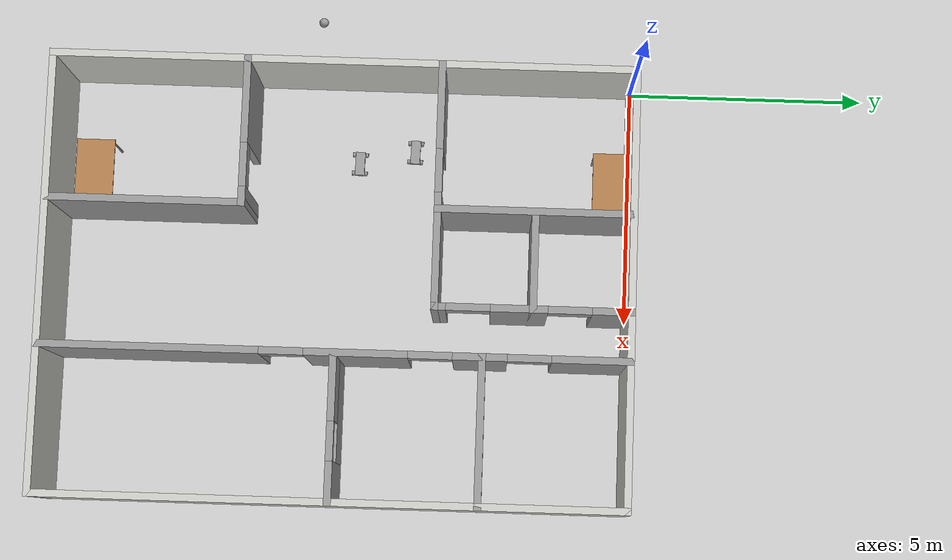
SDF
<sdf version="1.6">
 <world name="default">
  <plugin name="hello" filename="libhello.so"/>
  <light name="sun" type="directional">
   <pose>0 0 10 0 -0 0</pose>
   <diffuse>0.8 0.8 0.8 1</diffuse>
   <specular>0.2 0.2 0.2 1</specular>
   <attenuation>
    <range>1000</range>
    <constant>0.9</constant>
    <linear>0.01</linear>
    <quadratic>0.001</quadratic>
   </attenuation>
   <direction>-0.5 0.1 -0.9</direction>
  </light>
  <model name="ground_plane">
   <static>1</static>
   <link name="link">
    <collision name="collision">
     <geometry><plane><normal>0 0 1</normal><size>100 100</size></plane></geometry>
     <surface>
      <contact><collide_bitmask>65535</collide_bitmask></contact>
      <friction><ode><mu>100</mu><mu2>50</mu2></ode></friction>
     </surface>
    </collision>
    <visual name="visual">
     <cast_shadows>0</cast_shadows>
     <geometry><plane><normal>0 0 1</normal><size>100 100</size></plane></geometry>
     <material>
      <script><uri>file://media/materials/scripts/gazebo.material</uri><name>Gazebo/Grey</name></script>
     </material>
    </visual>
   </link>
  </model>
  <gravity>0 0 -9.8</gravity>
  <magnetic_field>6e-06 2.3e-05 -4.2e-05</magnetic_field>
  <atmosphere type="adiabatic"/>
  <physics name="default_physics" default="0" type="ode">
   <max_step_size>0.001</max_step_size>
   <real_time_factor>1</real_time_factor>
   <real_time_update_rate>1000</real_time_update_rate>
  </physics>
  <scene><ambient>0.4 0.4 0.4 1</ambient><background>0.7 0.7 0.7 1</background><shadows>1</shadows></scene>
  <spherical_coordinates>
   <surface_model>EARTH_WGS84</surface_model>
   <latitude_deg>0</latitude_deg>
   <longitude_deg>0</longitude_deg>
   <elevation>0</elevation>
   <heading_deg>0</heading_deg>
  </spherical_coordinates>
  <model name="my_building">
   <pose>4.5 -6 0 0 -0 0</pose>
   <link name="Wall_0">
    <collision name="Wall_0_Collision">
     <geometry><box><size>9.15 0.15 2.5</size></box></geometry>
     <pose>0 0 1.25 0 -0 0</pose>
    </collision>
    <visual name="Wall_0_Visual">
     <pose>0 0 1.25 0 -0 0</pose>
     <geometry><box><size>9.15 0.15 2.5</size></box></geometry>
     <material>
      <script><uri>file://media/materials/scripts/gazebo.material</uri><name>Gazebo/CeilingTiled</name></script>
      <ambient>0.760784 0.662745 0.627451 1</ambient>
     </material>
     <meta><layer>0</layer></meta>
    </visual>
    <pose>0 6 0 0 -0 0</pose>
   </link>
   <link name="Wall_11">
    <collision name="Wall_11_Collision">
     <geometry><box><size>4.15 0.15 2.5</size></box></geometry>
     <pose>0 0 1.25 0 -0 0</pose>
    </collision>
    <visual name="Wall_11_Visual">
     <pose>0 0 1.25 0 -0 0</pose>
     <geometry><box><size>4.15 0.15 2.5</size></box></geometry>
     <material>
      <script><uri>file://media/materials/scripts/gazebo.material</uri><name>Gazebo/Grey</name></script>
      <ambient>1 1 1 1</ambient>
     </material>
     <meta><layer>0</layer></meta>
    </visual>
    <pose>-1.5 4 0 0 0 -1.5708</pose>
   </link>
   <link name="Wall_13">
    <pose>-2 2 0 0 -0 0</pose>
    <visual name="Wall_13_Visual_0">
     <pose>-1.65602 0 1.25 0 -0 0</pose>
     <geometry><box><size>1.83797 0.15 2.5</size></box></geometry>
     <material>
      <script><uri>file://media/materials/scripts/gazebo.material</uri><name>Gazebo/Grey</name></script>
      <ambient>1 1 1 1</ambient>
     </material>
     <meta><layer>0</layer></meta>
    </visual>
    <collision name="Wall_13_Collision_0">
     <geometry><box><size>1.83797 0.15 2.5</size></box></geometry>
     <pose>-1.65602 0 1.25 0 -0 0</pose>
    </collision>
    <visual name="Wall_13_Visual_1">
     <pose>1.36898 0 1.25 0 -0 0</pose>
     <geometry><box><size>2.41203 0.15 2.5</size></box></geometry>
     <material>
      <script><uri>file://media/materials/scripts/gazebo.material</uri><name>Gazebo/Grey</name></script>
      <ambient>1 1 1 1</ambient>
     </material>
     <meta><layer>0</layer></meta>
    </visual>
    <collision name="Wall_13_Collision_1">
     <geometry><box><size>2.41203 0.15 2.5</size></box></geometry>
     <pose>1.36898 0 1.25 0 -0 0</pose>
    </collision>
    <visual name="Wall_13_Visual_2">
     <pose>-0.287034 0 2.25 0 -0 0</pose>
     <geometry><box><size>0.9 0.15 0.5</size></box></geometry>
     <material>
      <script><uri>file://media/materials/scripts/gazebo.material</uri><name>Gazebo/Grey</name></script>
      <ambient>1 1 1 1</ambient>
     </material>
     <meta><layer>0</layer></meta>
    </visual>
    <collision name="Wall_13_Collision_2">
     <geometry><box><size>0.9 0.15 0.5</size></box></geometry>
     <pose>-0.287034 0 2.25 0 -0 0</pose>
    </collision>
   </link>
   <link name="Wall_15">
    <pose>-3 -2 0 0 -0 0</pose>
    <visual name="Wall_15_Visual_0">
     <pose>-0.656017 0 1.25 0 -0 0</pose>
     <geometry><box><size>1.83797 0.15 2.5</size></box></geometry>
     <material>
      <script><uri>file://media/materials/scripts/gazebo.material</uri><name>Gazebo/Grey</name></script>
      <ambient>1 1 1 1</ambient>
     </material>
     <meta><layer>0</layer></meta>
    </visual>
    <collision name="Wall_15_Collision_0">
     <geometry><box><size>1.83797 0.15 2.5</size></box></geometry>
     <pose>-0.656017 0 1.25 0 -0 0</pose>
    </collision>
    <visual name="Wall_15_Visual_1">
     <pose>1.36898 0 1.25 0 -0 0</pose>
     <geometry><box><size>0.412034 0.15 2.5</size></box></geometry>
     <material>
      <script><uri>file://media/materials/scripts/gazebo.material</uri><name>Gazebo/Grey</name></script>
      <ambient>1 1 1 1</ambient>
     </material>
     <meta><layer>0</layer></meta>
    </visual>
    <collision name="Wall_15_Collision_1">
     <geometry><box><size>0.412034 0.15 2.5</size></box></geometry>
     <pose>1.36898 0 1.25 0 -0 0</pose>
    </collision>
    <visual name="Wall_15_Visual_2">
     <pose>0.712966 0 2.25 0 -0 0</pose>
     <geometry><box><size>0.9 0.15 0.5</size></box></geometry>
     <material>
      <script><uri>file://media/materials/scripts/gazebo.material</uri><name>Gazebo/Grey</name></script>
      <ambient>1 1 1 1</ambient>
     </material>
     <meta><layer>0</layer></meta>
    </visual>
    <collision name="Wall_15_Collision_2">
     <geometry><box><size>0.9 0.15 0.5</size></box></geometry>
     <pose>0.712966 0 2.25 0 -0 0</pose>
    </collision>
   </link>
   <link name="Wall_17">
    <pose>0.5 4 0 0 0 -1.5708</pose>
    <visual name="Wall_17_Visual_0">
     <pose>-1.63815 0 1.25 0 -0 0</pose>
     <geometry><box><size>0.873694 0.15 2.5</size></box></geometry>
     <material>
      <script><uri>file://media/materials/scripts/gazebo.material</uri><name>Gazebo/Grey</name></script>
      <ambient>1 1 1 1</ambient>
     </material>
     <meta><layer>0</layer></meta>
    </visual>
    <collision name="Wall_17_Collision_0">
     <geometry><box><size>0.873694 0.15 2.5</size></box></geometry>
     <pose>-1.63815 0 1.25 0 -0 0</pose>
    </collision>
    <visual name="Wall_17_Visual_1">
     <pose>0.28433 0 1.25 0 -0 0</pose>
     <geometry><box><size>1.17127 0.15 2.5</size></box></geometry>
     <material>
      <script><uri>file://media/materials/scripts/gazebo.material</uri><name>Gazebo/Grey</name></script>
      <ambient>1 1 1 1</ambient>
     </material>
     <meta><layer>0</layer></meta>
    </visual>
    <collision name="Wall_17_Collision_1">
     <geometry><box><size>1.17127 0.15 2.5</size></box></geometry>
     <pose>0.28433 0 1.25 0 -0 0</pose>
    </collision>
    <visual name="Wall_17_Visual_2">
     <pose>1.92248 0 1.25 0 -0 0</pose>
     <geometry><box><size>0.305035 0.15 2.5</size></box></geometry>
     <material>
      <script><uri>file://media/materials/scripts/gazebo.material</uri><name>Gazebo/Grey</name></script>
      <ambient>1 1 1 1</ambient>
     </material>
     <meta><layer>0</layer></meta>
    </visual>
    <collision name="Wall_17_Collision_2">
     <geometry><box><size>0.305035 0.15 2.5</size></box></geometry>
     <pose>1.92248 0 1.25 0 -0 0</pose>
    </collision>
    <visual name="Wall_17_Visual_3">
     <pose>-0.751306 0 2.25 0 -0 0</pose>
     <geometry><box><size>0.9 0.15 0.5</size></box></geometry>
     <material>
      <script><uri>file://media/materials/scripts/gazebo.material</uri><name>Gazebo/Grey</name></script>
      <ambient>1 1 1 1</ambient>
     </material>
     <meta><layer>0</layer></meta>
    </visual>
    <collision name="Wall_17_Collision_3">
     <geometry><box><size>0.9 0.15 0.5</size></box></geometry>
     <pose>-0.751306 0 2.25 0 -0 0</pose>
    </collision>
    <visual name="Wall_17_Visual_4">
     <pose>1.31997 0 2.25 0 -0 0</pose>
     <geometry><box><size>0.9 0.15 0.5</size></box></geometry>
     <material>
      <script><uri>file://media/materials/scripts/gazebo.material</uri><name>Gazebo/Grey</name></script>
      <ambient>1 1 1 1</ambient>
     </material>
     <meta><layer>0</layer></meta>
    </visual>
    <collision name="Wall_17_Collision_4">
     <geometry><box><size>0.9 0.15 0.5</size></box></geometry>
     <pose>1.31997 0 2.25 0 -0 0</pose>
    </collision>
   </link>
   <link name="Wall_19">
    <collision name="Wall_19_Collision">
     <geometry><box><size>3.15 0.15 2.5</size></box></geometry>
     <pose>0 0 1.25 0 -0 0</pose>
    </collision>
    <visual name="Wall_19_Visual">
     <pose>0 0 1.25 0 -0 0</pose>
     <geometry><box><size>3.15 0.15 2.5</size></box></geometry>
     <material>
      <script><uri>file://media/materials/scripts/gazebo.material</uri><name>Gazebo/Grey</name></script>
      <ambient>1 1 1 1</ambient>
     </material>
     <meta><layer>0</layer></meta>
    </visual>
    <pose>3 3 0 0 -0 3.14159</pose>
   </link>
   <link name="Wall_2">
    <collision name="Wall_2_Collision">
     <geometry><box><size>12.15 0.15 2.5</size></box></geometry>
     <pose>0 0 1.25 0 -0 0</pose>
    </collision>
    <visual name="Wall_2_Visual">
     <pose>0 0 1.25 0 -0 0</pose>
     <geometry><box><size>12.15 0.15 2.5</size></box></geometry>
     <material>
      <script><uri>file://media/materials/scripts/gazebo.material</uri><name>Gazebo/CeilingTiled</name></script>
      <ambient>0.760784 0.662745 0.627451 1</ambient>
     </material>
     <meta><layer>0</layer></meta>
    </visual>
    <pose>4.5 0 0 0 0 -1.5708</pose>
   </link>
   <link name="Wall_21">
    <pose>3 0 0 0 -0 3.14159</pose>
    <visual name="Wall_21_Visual_0">
     <pose>-1.12718 0 1.25 0 -0 0</pose>
     <geometry><box><size>0.895631 0.15 2.5</size></box></geometry>
     <material>
      <script><uri>file://media/materials/scripts/gazebo.material</uri><name>Gazebo/Grey</name></script>
      <ambient>1 1 1 1</ambient>
     </material>
     <meta><layer>0</layer></meta>
    </visual>
    <collision name="Wall_21_Collision_0">
     <geometry><box><size>0.895631 0.15 2.5</size></box></geometry>
     <pose>-1.12718 0 1.25 0 -0 0</pose>
    </collision>
    <visual name="Wall_21_Visual_1">
     <pose>0.447816 0 0.75 0 -0 0</pose>
     <geometry><box><size>2.25437 0.15 1.5</size></box></geometry>
     <material>
      <script><uri>file://media/materials/scripts/gazebo.material</uri><name>Gazebo/Grey</name></script>
      <ambient>1 1 1 1</ambient>
     </material>
     <meta><layer>0</layer></meta>
    </visual>
    <collision name="Wall_21_Collision_1">
     <geometry><box><size>2.25437 0.15 1.5</size></box></geometry>
     <pose>0.447816 0 0.75 0 -0 0</pose>
    </collision>
    <visual name="Wall_21_Visual_2">
     <pose>0.847816 0 2 0 -0 0</pose>
     <geometry><box><size>1.45437 0.15 1</size></box></geometry>
     <material>
      <script><uri>file://media/materials/scripts/gazebo.material</uri><name>Gazebo/Grey</name></script>
      <ambient>1 1 1 1</ambient>
     </material>
     <meta><layer>0</layer></meta>
    </visual>
    <collision name="Wall_21_Collision_2">
     <geometry><box><size>1.45437 0.15 1</size></box></geometry>
     <pose>0.847816 0 2 0 -0 0</pose>
    </collision>
    <visual name="Wall_21_Visual_3">
     <pose>-0.279369 0 2.4 0 -0 0</pose>
     <geometry><box><size>0.8 0.15 0.2</size></box></geometry>
     <material>
      <script><uri>file://media/materials/scripts/gazebo.material</uri><name>Gazebo/Grey</name></script>
      <ambient>1 1 1 1</ambient>
     </material>
     <meta><layer>0</layer></meta>
    </visual>
    <collision name="Wall_21_Collision_3">
     <geometry><box><size>0.8 0.15 0.2</size></box></geometry>
     <pose>-0.279369 0 2.4 0 -0 0</pose>
    </collision>
   </link>
   <link name="Wall_23">
    <collision name="Wall_23_Collision">
     <geometry><box><size>2.15 0.15 2.5</size></box></geometry>
     <pose>0 0 1.25 0 -0 0</pose>
    </collision>
    <visual name="Wall_23_Visual">
     <pose>0 0 1.25 0 -0 0</pose>
     <geometry><box><size>2.15 0.15 2.5</size></box></geometry>
     <material>
      <script><uri>file://media/materials/scripts/gazebo.material</uri><name>Gazebo/Grey</name></script>
      <ambient>1 1 1 1</ambient>
     </material>
     <meta><layer>0</layer></meta>
    </visual>
    <pose>-0.5 4 0 0 -0 0</pose>
   </link>
   <link name="Wall_25">
    <collision name="Wall_25_Collision">
     <geometry><box><size>4.15 0.15 2.5</size></box></geometry>
     <pose>0 0 1.25 0 -0 0</pose>
    </collision>
    <visual name="Wall_25_Visual">
     <pose>0 0 1.25 0 -0 0</pose>
     <geometry><box><size>4.15 0.15 2.5</size></box></geometry>
     <material>
      <script><uri>file://media/materials/scripts/gazebo.material</uri><name>Gazebo/Grey</name></script>
      <ambient>1 1 1 1</ambient>
     </material>
     <meta><layer>0</layer></meta>
    </visual>
    <pose>-1.5 -4 0 0 0 -1.5708</pose>
   </link>
   <link name="Wall_5">
    <collision name="Wall_5_Collision">
     <geometry><box><size>12.15 0.15 2.5</size></box></geometry>
     <pose>0 0 1.25 0 -0 0</pose>
    </collision>
    <visual name="Wall_5_Visual">
     <pose>0 0 1.25 0 -0 0</pose>
     <geometry><box><size>12.15 0.15 2.5</size></box></geometry>
     <material>
      <script><uri>file://media/materials/scripts/gazebo.material</uri><name>Gazebo/CeilingTiled</name></script>
      <ambient>0.760784 0.662745 0.627451 1</ambient>
     </material>
     <meta><layer>0</layer></meta>
    </visual>
    <pose>-4.5 0 0 0 0 -1.5708</pose>
   </link>
   <link name="Wall_7">
    <collision name="Wall_7_Collision">
     <geometry><box><size>9.15 0.15 2.5</size></box></geometry>
     <pose>0 0 1.25 0 -0 0</pose>
    </collision>
    <visual name="Wall_7_Visual">
     <pose>0 0 1.25 0 -0 0</pose>
     <geometry><box><size>9.15 0.15 2.5</size></box></geometry>
     <material>
      <script><uri>file://media/materials/scripts/gazebo.material</uri><name>Gazebo/CeilingTiled</name></script>
      <ambient>0.760784 0.662745 0.627451 1</ambient>
     </material>
     <meta><layer>0</layer></meta>
    </visual>
    <pose>0 -6 0 0 -0 0</pose>
   </link>
   <link name="Wall_9">
    <pose>1.5 0 0 0 0 -1.5708</pose>
    <visual name="Wall_9_Visual_0">
     <pose>-5.24129 0 1.25 0 -0 0</pose>
     <geometry><box><size>1.66743 0.15 2.5</size></box></geometry>
     <material>
      <script><uri>file://media/materials/scripts/gazebo.material</uri><name>Gazebo/Grey</name></script>
      <ambient>1 1 1 1</ambient>
     </material>
     <meta><layer>0</layer></meta>
    </visual>
    <collision name="Wall_9_Collision_0">
     <geometry><box><size>1.66743 0.15 2.5</size></box></geometry>
     <pose>-5.24129 0 1.25 0 -0 0</pose>
    </collision>
    <visual name="Wall_9_Visual_1">
     <pose>-2.95379 0 1.25 0 -0 0</pose>
     <geometry><box><size>1.10756 0.15 2.5</size></box></geometry>
     <material>
      <script><uri>file://media/materials/scripts/gazebo.material</uri><name>Gazebo/Grey</name></script>
      <ambient>1 1 1 1</ambient>
     </material>
     <meta><layer>0</layer></meta>
    </visual>
    <collision name="Wall_9_Collision_1">
     <geometry><box><size>1.10756 0.15 2.5</size></box></geometry>
     <pose>-2.95379 0 1.25 0 -0 0</pose>
    </collision>
    <visual name="Wall_9_Visual_2">
     <pose>-0.444349 0 1.25 0 -0 0</pose>
     <geometry><box><size>2.11133 0.15 2.5</size></box></geometry>
     <material>
      <script><uri>file://media/materials/scripts/gazebo.material</uri><name>Gazebo/Grey</name></script>
      <ambient>1 1 1 1</ambient>
     </material>
     <meta><layer>0</layer></meta>
    </visual>
    <collision name="Wall_9_Collision_2">
     <geometry><box><size>2.11133 0.15 2.5</size></box></geometry>
     <pose>-0.444349 0 1.25 0 -0 0</pose>
    </collision>
    <visual name="Wall_9_Visual_3">
     <pose>3.79316 0 1.25 0 -0 0</pose>
     <geometry><box><size>4.56368 0.15 2.5</size></box></geometry>
     <material>
      <script><uri>file://media/materials/scripts/gazebo.material</uri><name>Gazebo/Grey</name></script>
      <ambient>1 1 1 1</ambient>
     </material>
     <meta><layer>0</layer></meta>
    </visual>
    <collision name="Wall_9_Collision_3">
     <geometry><box><size>4.56368 0.15 2.5</size></box></geometry>
     <pose>3.79316 0 1.25 0 -0 0</pose>
    </collision>
    <visual name="Wall_9_Visual_4">
     <pose>-3.95757 0 2.25 0 -0 0</pose>
     <geometry><box><size>0.9 0.15 0.5</size></box></geometry>
     <material>
      <script><uri>file://media/materials/scripts/gazebo.material</uri><name>Gazebo/Grey</name></script>
      <ambient>1 1 1 1</ambient>
     </material>
     <meta><layer>0</layer></meta>
    </visual>
    <collision name="Wall_9_Collision_4">
     <geometry><box><size>0.9 0.15 0.5</size></box></geometry>
     <pose>-3.95757 0 2.25 0 -0 0</pose>
    </collision>
    <visual name="Wall_9_Visual_5">
     <pose>-1.95002 0 2.25 0 -0 0</pose>
     <geometry><box><size>0.9 0.15 0.5</size></box></geometry>
     <material>
      <script><uri>file://media/materials/scripts/gazebo.material</uri><name>Gazebo/Grey</name></script>
      <ambient>1 1 1 1</ambient>
     </material>
     <meta><layer>0</layer></meta>
    </visual>
    <collision name="Wall_9_Collision_5">
     <geometry><box><size>0.9 0.15 0.5</size></box></geometry>
     <pose>-1.95002 0 2.25 0 -0 0</pose>
    </collision>
    <visual name="Wall_9_Visual_6">
     <pose>1.06132 0 2.25 0 -0 0</pose>
     <geometry><box><size>0.9 0.15 0.5</size></box></geometry>
     <material>
      <script><uri>file://media/materials/scripts/gazebo.material</uri><name>Gazebo/Grey</name></script>
      <ambient>1 1 1 1</ambient>
     </material>
     <meta><layer>0</layer></meta>
    </visual>
    <collision name="Wall_9_Collision_6">
     <geometry><box><size>0.9 0.15 0.5</size></box></geometry>
     <pose>1.06132 0 2.25 0 -0 0</pose>
    </collision>
   </link>
   <static>1</static>
  </model>
  <model name="table">
   <static>1</static>
   <link name="link">
    <collision name="surface">
     <pose>0 0 1 0 -0 0</pose>
     <geometry><box><size>1.5 0.8 0.03</size></box></geometry>
     <surface><friction><ode><mu>0.6</mu><mu2>0.6</mu2></ode></friction></surface>
    </collision>
    <visual name="visual1">
     <pose>0 0 1 0 -0 0</pose>
     <geometry><box><size>1.5 0.8 0.03</size></box></geometry>
     <material>
      <script><uri>file://media/materials/scripts/gazebo.material</uri><name>Gazebo/Wood</name></script>
     </material>
    </visual>
    <collision name="front_left_leg">
     <pose>0.68 0.38 0.5 0 -0 0</pose>
     <geometry><cylinder><radius>0.02</radius><length>1</length></cylinder></geometry>
    </collision>
    <visual name="front_left_leg">
     <pose>0.68 0.38 0.5 0 -0 0</pose>
     <geometry><cylinder><radius>0.02</radius><length>1</length></cylinder></geometry>
     <material>
      <script><uri>file://media/materials/scripts/gazebo.material</uri><name>Gazebo/Grey</name></script>
     </material>
    </visual>
    <collision name="front_right_leg">
     <pose>0.68 -0.38 0.5 0 -0 0</pose>
     <geometry><cylinder><radius>0.02</radius><length>1</length></cylinder></geometry>
    </collision>
    <visual name="front_right_leg">
     <pose>0.68 -0.38 0.5 0 -0 0</pose>
     <geometry><cylinder><radius>0.02</radius><length>1</length></cylinder></geometry>
     <material>
      <script><uri>file://media/materials/scripts/gazebo.material</uri><name>Gazebo/Grey</name></script>
     </material>
    </visual>
    <collision name="back_right_leg">
     <pose>-0.68 -0.38 0.5 0 -0 0</pose>
     <geometry><cylinder><radius>0.02</radius><length>1</length></cylinder></geometry>
    </collision>
    <visual name="back_right_leg">
     <pose>-0.68 -0.38 0.5 0 -0 0</pose>
     <geometry><cylinder><radius>0.02</radius><length>1</length></cylinder></geometry>
     <material>
      <script><uri>file://media/materials/scripts/gazebo.material</uri><name>Gazebo/Grey</name></script>
     </material>
    </visual>
    <collision name="back_left_leg">
     <pose>-0.68 0.38 0.5 0 -0 0</pose>
     <geometry><cylinder><radius>0.02</radius><length>1</length></cylinder></geometry>
    </collision>
    <visual name="back_left_leg">
     <pose>-0.68 0.38 0.5 0 -0 0</pose>
     <geometry><cylinder><radius>0.02</radius><length>1</length></cylinder></geometry>
     <material>
      <script><uri>file://media/materials/scripts/gazebo.material</uri><name>Gazebo/Grey</name></script>
     </material>
    </visual>
   </link>
   <pose>2.23417 -0.391626 0 0 -0 0</pose>
  </model>
  <model name="table_0">
   <static>1</static>
   <link name="link">
    <collision name="surface">
     <pose>0 0 1 0 -0 0</pose>
     <geometry><box><size>1.5 0.8 0.03</size></box></geometry>
     <surface><friction><ode><mu>0.6</mu><mu2>0.6</mu2></ode></friction></surface>
    </collision>
    <visual name="visual1">
     <pose>0 0 1 0 -0 0</pose>
     <geometry><box><size>1.5 0.8 0.03</size></box></geometry>
     <material>
      <script><uri>file://media/materials/scripts/gazebo.material</uri><name>Gazebo/Wood</name></script>
     </material>
    </visual>
    <collision name="front_left_leg">
     <pose>0.68 0.38 0.5 0 -0 0</pose>
     <geometry><cylinder><radius>0.02</radius><length>1</length></cylinder></geometry>
    </collision>
    <visual name="front_left_leg">
     <pose>0.68 0.38 0.5 0 -0 0</pose>
     <geometry><cylinder><radius>0.02</radius><length>1</length></cylinder></geometry>
     <material>
      <script><uri>file://media/materials/scripts/gazebo.material</uri><name>Gazebo/Grey</name></script>
     </material>
    </visual>
    <collision name="front_right_leg">
     <pose>0.68 -0.38 0.5 0 -0 0</pose>
     <geometry><cylinder><radius>0.02</radius><length>1</length></cylinder></geometry>
    </collision>
    <visual name="front_right_leg">
     <pose>0.68 -0.38 0.5 0 -0 0</pose>
     <geometry><cylinder><radius>0.02</radius><length>1</length></cylinder></geometry>
     <material>
      <script><uri>file://media/materials/scripts/gazebo.material</uri><name>Gazebo/Grey</name></script>
     </material>
    </visual>
    <collision name="back_right_leg">
     <pose>-0.68 -0.38 0.5 0 -0 0</pose>
     <geometry><cylinder><radius>0.02</radius><length>1</length></cylinder></geometry>
    </collision>
    <visual name="back_right_leg">
     <pose>-0.68 -0.38 0.5 0 -0 0</pose>
     <geometry><cylinder><radius>0.02</radius><length>1</length></cylinder></geometry>
     <material>
      <script><uri>file://media/materials/scripts/gazebo.material</uri><name>Gazebo/Grey</name></script>
     </material>
    </visual>
    <collision name="back_left_leg">
     <pose>-0.68 0.38 0.5 0 -0 0</pose>
     <geometry><cylinder><radius>0.02</radius><length>1</length></cylinder></geometry>
    </collision>
    <visual name="back_left_leg">
     <pose>-0.68 0.38 0.5 0 -0 0</pose>
     <geometry><cylinder><radius>0.02</radius><length>1</length></cylinder></geometry>
     <material>
      <script><uri>file://media/materials/scripts/gazebo.material</uri><name>Gazebo/Grey</name></script>
     </material>
    </visual>
   </link>
   <pose>2.26428 -11.2981 0 0 -0 0</pose>
  </model>
  <model name="robot">
   <link name="link_0">
    <pose>0 0 0.1 0 -0 0</pose>
    <inertial>
     <mass>1</mass>
     <inertia>
      <ixx>0.166667</ixx>
      <ixy>0</ixy>
      <ixz>0</ixz>
      <iyy>0.166667</iyy>
      <iyz>0</iyz>
      <izz>0.166667</izz>
     </inertia>
    </inertial>
    <visual name="visual">
     <geometry><box><size>0.5 0.2 0.1</size></box></geometry>
     <material>
      <lighting>1</lighting>
      <script><uri>file://media/materials/scripts/gazebo.material</uri><name>Gazebo/Grey</name></script>
      <shader type="pixel"><normal_map>__default__</normal_map></shader>
      <ambient>0.3 0.3 0.3 1</ambient>
      <diffuse>0.7 0.7 0.7 1</diffuse>
      <specular>0.01 0.01 0.01 1</specular>
      <emissive>0 0 0 1</emissive>
     </material>
    </visual>
    <collision name="collision">
     <geometry><box><size>0.5 0.2 0.1</size></box></geometry>
     <surface>
      <friction>
       <ode><mu>1</mu><mu2>1</mu2><fdir1>0 0 0</fdir1><slip1>0</slip1><slip2>0</slip2></ode>
       <torsional>
        <coefficient>1</coefficient>
        <patch_radius>0</patch_radius>
        <surface_radius>0</surface_radius>
        <use_patch_radius>1</use_patch_radius>
        <ode><slip>0</slip></ode>
       </torsional>
      </friction>
      <bounce><restitution_coefficient>0</restitution_coefficient><threshold>1e+06</threshold></bounce>
      <contact>
       <collide_without_contact>0</collide_without_contact>
       <collide_without_contact_bitmask>1</collide_without_contact_bitmask>
       <collide_bitmask>1</collide_bitmask>
       <ode>
        <soft_cfm>0</soft_cfm>
        <soft_erp>0.2</soft_erp>
        <kp>1e+13</kp>
        <kd>1</kd>
        <max_vel>0.01</max_vel>
        <min_depth>0</min_depth>
       </ode>
       <bullet>
        <split_impulse>1</split_impulse>
        <split_impulse_penetration_threshold>-0.01</split_impulse_penetration_threshold>
        <soft_cfm>0</soft_cfm>
        <soft_erp>0.2</soft_erp>
        <kp>1e+13</kp>
        <kd>1</kd>
       </bullet>
      </contact>
     </surface>
    </collision>
   </link>
   <link name="link_1">
    <pose>-0.2 -0.14 0.05 0 -0 0</pose>
    <inertial>
     <mass>1</mass>
     <inertia><ixx>0.145833</ixx><ixy>0</ixy><ixz>0</ixz><iyy>0.145833</iyy><iyz>0</iyz><izz>0.125</izz></inertia>
    </inertial>
    <visual name="visual">
     <pose>0 0 0 1.5707 -0 0</pose>
     <geometry><cylinder><radius>0.05</radius><length>0.05</length></cylinder></geometry>
     <material>
      <lighting>1</lighting>
      <script><uri>file://media/materials/scripts/gazebo.material</uri><name>Gazebo/Grey</name></script>
      <shader type="pixel"><normal_map>__default__</normal_map></shader>
      <ambient>0.3 0.3 0.3 1</ambient>
      <diffuse>0.7 0.7 0.7 1</diffuse>
      <specular>0.01 0.01 0.01 1</specular>
      <emissive>0 0 0 1</emissive>
     </material>
    </visual>
    <collision name="collision">
     <pose>0 0 0 1.5707 -0 0</pose>
     <geometry><cylinder><radius>0.05</radius><length>0.05</length></cylinder></geometry>
     <surface>
      <friction>
       <ode><mu>1</mu><mu2>1</mu2><fdir1>0 0 0</fdir1><slip1>0</slip1><slip2>0</slip2></ode>
       <torsional>
        <coefficient>1</coefficient>
        <patch_radius>0</patch_radius>
        <surface_radius>0</surface_radius>
        <use_patch_radius>1</use_patch_radius>
        <ode><slip>0</slip></ode>
       </torsional>
      </friction>
      <bounce><restitution_coefficient>0</restitution_coefficient><threshold>1e+06</threshold></bounce>
      <contact>
       <collide_without_contact>0</collide_without_contact>
       <collide_without_contact_bitmask>1</collide_without_contact_bitmask>
       <collide_bitmask>1</collide_bitmask>
       <ode>
        <soft_cfm>0</soft_cfm>
        <soft_erp>0.2</soft_erp>
        <kp>1e+13</kp>
        <kd>1</kd>
        <max_vel>0.01</max_vel>
        <min_depth>0</min_depth>
       </ode>
       <bullet>
        <split_impulse>1</split_impulse>
        <split_impulse_penetration_threshold>-0.01</split_impulse_penetration_threshold>
        <soft_cfm>0</soft_cfm>
        <soft_erp>0.2</soft_erp>
        <kp>1e+13</kp>
        <kd>1</kd>
       </bullet>
      </contact>
     </surface>
    </collision>
   </link>
   <link name="link_1_clone">
    <pose>0.2 -0.14 0.05 0 -0 0</pose>
    <inertial>
     <mass>1</mass>
     <inertia><ixx>0.145833</ixx><ixy>0</ixy><ixz>0</ixz><iyy>0.145833</iyy><iyz>0</iyz><izz>0.125</izz></inertia>
    </inertial>
    <visual name="visual">
     <pose>0 0 0 1.5707 -0 0</pose>
     <geometry><cylinder><radius>0.05</radius><length>0.05</length></cylinder></geometry>
     <material>
      <lighting>1</lighting>
      <script><uri>file://media/materials/scripts/gazebo.material</uri><name>Gazebo/Grey</name></script>
      <shader type="pixel"><normal_map>__default__</normal_map></shader>
      <ambient>0.3 0.3 0.3 1</ambient>
      <diffuse>0.7 0.7 0.7 1</diffuse>
      <specular>0.01 0.01 0.01 1</specular>
      <emissive>0 0 0 1</emissive>
     </material>
    </visual>
    <collision name="collision">
     <pose>0 0 0 1.5707 -0 0</pose>
     <geometry><cylinder><radius>0.05</radius><length>0.05</length></cylinder></geometry>
     <surface>
      <friction>
       <ode><mu>1</mu><mu2>1</mu2><fdir1>0 0 0</fdir1><slip1>0</slip1><slip2>0</slip2></ode>
       <torsional>
        <coefficient>1</coefficient>
        <patch_radius>0</patch_radius>
        <surface_radius>0</surface_radius>
        <use_patch_radius>1</use_patch_radius>
        <ode><slip>0</slip></ode>
       </torsional>
      </friction>
      <bounce><restitution_coefficient>0</restitution_coefficient><threshold>1e+06</threshold></bounce>
      <contact>
       <collide_without_contact>0</collide_without_contact>
       <collide_without_contact_bitmask>1</collide_without_contact_bitmask>
       <collide_bitmask>1</collide_bitmask>
       <ode>
        <soft_cfm>0</soft_cfm>
        <soft_erp>0.2</soft_erp>
        <kp>1e+13</kp>
        <kd>1</kd>
        <max_vel>0.01</max_vel>
        <min_depth>0</min_depth>
       </ode>
       <bullet>
        <split_impulse>1</split_impulse>
        <split_impulse_penetration_threshold>-0.01</split_impulse_penetration_threshold>
        <soft_cfm>0</soft_cfm>
        <soft_erp>0.2</soft_erp>
        <kp>1e+13</kp>
        <kd>1</kd>
       </bullet>
      </contact>
     </surface>
    </collision>
   </link>
   <link name="link_1_clone_0">
    <pose>0.2 0.14 0.05 0 -0 0</pose>
    <inertial>
     <mass>1</mass>
     <inertia><ixx>0.145833</ixx><ixy>0</ixy><ixz>0</ixz><iyy>0.145833</iyy><iyz>0</iyz><izz>0.125</izz></inertia>
    </inertial>
    <visual name="visual">
     <pose>0 0 0 1.5707 -0 0</pose>
     <geometry><cylinder><radius>0.05</radius><length>0.05</length></cylinder></geometry>
     <material>
      <lighting>1</lighting>
      <script><uri>file://media/materials/scripts/gazebo.material</uri><name>Gazebo/Grey</name></script>
      <shader type="pixel"><normal_map>__default__</normal_map></shader>
      <ambient>0.3 0.3 0.3 1</ambient>
      <diffuse>0.7 0.7 0.7 1</diffuse>
      <specular>0.01 0.01 0.01 1</specular>
      <emissive>0 0 0 1</emissive>
     </material>
    </visual>
    <collision name="collision">
     <pose>0 0 0 1.5707 -0 0</pose>
     <geometry><cylinder><radius>0.05</radius><length>0.05</length></cylinder></geometry>
     <surface>
      <friction>
       <ode><mu>1</mu><mu2>1</mu2><fdir1>0 0 0</fdir1><slip1>0</slip1><slip2>0</slip2></ode>
       <torsional>
        <coefficient>1</coefficient>
        <patch_radius>0</patch_radius>
        <surface_radius>0</surface_radius>
        <use_patch_radius>1</use_patch_radius>
        <ode><slip>0</slip></ode>
       </torsional>
      </friction>
      <bounce><restitution_coefficient>0</restitution_coefficient><threshold>1e+06</threshold></bounce>
      <contact>
       <collide_without_contact>0</collide_without_contact>
       <collide_without_contact_bitmask>1</collide_without_contact_bitmask>
       <collide_bitmask>1</collide_bitmask>
       <ode>
        <soft_cfm>0</soft_cfm>
        <soft_erp>0.2</soft_erp>
        <kp>1e+13</kp>
        <kd>1</kd>
        <max_vel>0.01</max_vel>
        <min_depth>0</min_depth>
       </ode>
       <bullet>
        <split_impulse>1</split_impulse>
        <split_impulse_penetration_threshold>-0.01</split_impulse_penetration_threshold>
        <soft_cfm>0</soft_cfm>
        <soft_erp>0.2</soft_erp>
        <kp>1e+13</kp>
        <kd>1</kd>
       </bullet>
      </contact>
     </surface>
    </collision>
   </link>
   <link name="link_1_clone_1">
    <pose>-0.2 0.14 0.05 0 -0 0</pose>
    <inertial>
     <mass>1</mass>
     <inertia><ixx>0.145833</ixx><ixy>0</ixy><ixz>0</ixz><iyy>0.145833</iyy><iyz>0</iyz><izz>0.125</izz></inertia>
    </inertial>
    <visual name="visual">
     <pose>0 0 0 1.5707 -0 0</pose>
     <geometry><cylinder><radius>0.05</radius><length>0.05</length></cylinder></geometry>
     <material>
      <lighting>1</lighting>
      <script><uri>file://media/materials/scripts/gazebo.material</uri><name>Gazebo/Grey</name></script>
      <shader type="pixel"><normal_map>__default__</normal_map></shader>
      <ambient>0.3 0.3 0.3 1</ambient>
      <diffuse>0.7 0.7 0.7 1</diffuse>
      <specular>0.01 0.01 0.01 1</specular>
      <emissive>0 0 0 1</emissive>
     </material>
    </visual>
    <collision name="collision">
     <pose>0 0 0 1.5707 -0 0</pose>
     <geometry><cylinder><radius>0.05</radius><length>0.05</length></cylinder></geometry>
     <surface>
      <friction>
       <ode><mu>1</mu><mu2>1</mu2><fdir1>0 0 0</fdir1><slip1>0</slip1><slip2>0</slip2></ode>
       <torsional>
        <coefficient>1</coefficient>
        <patch_radius>0</patch_radius>
        <surface_radius>0</surface_radius>
        <use_patch_radius>1</use_patch_radius>
        <ode><slip>0</slip></ode>
       </torsional>
      </friction>
      <bounce><restitution_coefficient>0</restitution_coefficient><threshold>1e+06</threshold></bounce>
      <contact>
       <collide_without_contact>0</collide_without_contact>
       <collide_without_contact_bitmask>1</collide_without_contact_bitmask>
       <collide_bitmask>1</collide_bitmask>
       <ode>
        <soft_cfm>0</soft_cfm>
        <soft_erp>0.2</soft_erp>
        <kp>1e+13</kp>
        <kd>1</kd>
        <max_vel>0.01</max_vel>
        <min_depth>0</min_depth>
       </ode>
       <bullet>
        <split_impulse>1</split_impulse>
        <split_impulse_penetration_threshold>-0.01</split_impulse_penetration_threshold>
        <soft_cfm>0</soft_cfm>
        <soft_erp>0.2</soft_erp>
        <kp>1e+13</kp>
        <kd>1</kd>
       </bullet>
      </contact>
     </surface>
    </collision>
   </link>
   <joint name="link_0_JOINT_0" type="revolute">
    <parent>link_0</parent>
    <child>link_1</child>
    <axis>
     <xyz>0 1 0</xyz>
     <use_parent_model_frame>0</use_parent_model_frame>
     <limit>
      <lower>-1.79769e+308</lower>
      <upper>1.79769e+308</upper>
      <effort>-1</effort>
      <velocity>-1</velocity>
     </limit>
     <dynamics>
      <spring_reference>0</spring_reference>
      <spring_stiffness>0</spring_stiffness>
      <damping>0</damping>
      <friction>0</friction>
     </dynamics>
    </axis>
    <physics>
     <ode><limit><cfm>0</cfm><erp>0.2</erp></limit><suspension><cfm>0</cfm><erp>0.2</erp></suspension></ode>
    </physics>
   </joint>
   <joint name="link_0_JOINT_2" type="revolute">
    <parent>link_0</parent>
    <child>link_1_clone</child>
    <axis>
     <xyz>0 1 0</xyz>
     <use_parent_model_frame>0</use_parent_model_frame>
     <limit>
      <lower>-1.79769e+308</lower>
      <upper>1.79769e+308</upper>
      <effort>-1</effort>
      <velocity>-1</velocity>
     </limit>
     <dynamics>
      <spring_reference>0</spring_reference>
      <spring_stiffness>0</spring_stiffness>
      <damping>0</damping>
     </dynamics>
    </axis>
    <physics>
     <ode><limit><cfm>0</cfm><erp>0.2</erp></limit><suspension><cfm>0</cfm><erp>0.2</erp></suspension></ode>
    </physics>
   </joint>
   <joint name="link_0_JOINT_3" type="revolute">
    <parent>link_0</parent>
    <child>link_1_clone_0</child>
    <axis>
     <xyz>0 -1 0</xyz>
     <use_parent_model_frame>0</use_parent_model_frame>
     <limit>
      <lower>-1.79769e+308</lower>
      <upper>1.79769e+308</upper>
      <effort>-1</effort>
      <velocity>-1</velocity>
     </limit>
     <dynamics>
      <spring_reference>0</spring_reference>
      <spring_stiffness>0</spring_stiffness>
      <damping>0</damping>
     </dynamics>
    </axis>
    <physics>
     <ode><limit><cfm>0</cfm><erp>0.2</erp></limit><suspension><cfm>0</cfm><erp>0.2</erp></suspension></ode>
    </physics>
   </joint>
   <joint name="link_0_JOINT_4" type="revolute">
    <parent>link_0</parent>
    <child>link_1_clone_1</child>
    <axis>
     <xyz>0 -1 0</xyz>
     <use_parent_model_frame>0</use_parent_model_frame>
     <limit>
      <lower>-1.79769e+308</lower>
      <upper>1.79769e+308</upper>
      <effort>-1</effort>
      <velocity>-1</velocity>
     </limit>
     <dynamics>
      <spring_reference>0</spring_reference>
      <spring_stiffness>0</spring_stiffness>
      <damping>0</damping>
     </dynamics>
    </axis>
    <physics>
     <ode><limit><cfm>0</cfm><erp>0.2</erp></limit><suspension><cfm>0</cfm><erp>0.2</erp></suspension></ode>
    </physics>
   </joint>
   <static>0</static>
   <pose>1.41719 -4.57777 -1e-06 2e-06 -1.7e-05 -0.031561</pose>
  </model>
  <model name="robot_0">
   <link name="link_0">
    <pose>0 0 0.1 0 -0 0</pose>
    <inertial>
     <mass>1</mass>
     <inertia>
      <ixx>0.166667</ixx>
      <ixy>0</ixy>
      <ixz>0</ixz>
      <iyy>0.166667</iyy>
      <iyz>0</iyz>
      <izz>0.166667</izz>
     </inertia>
    </inertial>
    <visual name="visual">
     <geometry><box><size>0.5 0.2 0.1</size></box></geometry>
     <material>
      <lighting>1</lighting>
      <script><uri>file://media/materials/scripts/gazebo.material</uri><name>Gazebo/Grey</name></script>
      <shader type="pixel"><normal_map>__default__</normal_map></shader>
      <ambient>0.3 0.3 0.3 1</ambient>
      <diffuse>0.7 0.7 0.7 1</diffuse>
      <specular>0.01 0.01 0.01 1</specular>
      <emissive>0 0 0 1</emissive>
     </material>
    </visual>
    <collision name="collision">
     <geometry><box><size>0.5 0.2 0.1</size></box></geometry>
     <surface>
      <friction>
       <ode><mu>1</mu><mu2>1</mu2><fdir1>0 0 0</fdir1><slip1>0</slip1><slip2>0</slip2></ode>
       <torsional>
        <coefficient>1</coefficient>
        <patch_radius>0</patch_radius>
        <surface_radius>0</surface_radius>
        <use_patch_radius>1</use_patch_radius>
        <ode><slip>0</slip></ode>
       </torsional>
      </friction>
      <bounce><restitution_coefficient>0</restitution_coefficient><threshold>1e+06</threshold></bounce>
      <contact>
       <collide_without_contact>0</collide_without_contact>
       <collide_without_contact_bitmask>1</collide_without_contact_bitmask>
       <collide_bitmask>1</collide_bitmask>
       <ode>
        <soft_cfm>0</soft_cfm>
        <soft_erp>0.2</soft_erp>
        <kp>1e+13</kp>
        <kd>1</kd>
        <max_vel>0.01</max_vel>
        <min_depth>0</min_depth>
       </ode>
       <bullet>
        <split_impulse>1</split_impulse>
        <split_impulse_penetration_threshold>-0.01</split_impulse_penetration_threshold>
        <soft_cfm>0</soft_cfm>
        <soft_erp>0.2</soft_erp>
        <kp>1e+13</kp>
        <kd>1</kd>
       </bullet>
      </contact>
     </surface>
    </collision>
   </link>
   <link name="link_1">
    <pose>-0.2 -0.14 0.05 0 -0 0</pose>
    <inertial>
     <mass>1</mass>
     <inertia><ixx>0.145833</ixx><ixy>0</ixy><ixz>0</ixz><iyy>0.145833</iyy><iyz>0</iyz><izz>0.125</izz></inertia>
    </inertial>
    <visual name="visual">
     <pose>0 0 0 1.5707 -0 0</pose>
     <geometry><cylinder><radius>0.05</radius><length>0.05</length></cylinder></geometry>
     <material>
      <lighting>1</lighting>
      <script><uri>file://media/materials/scripts/gazebo.material</uri><name>Gazebo/Grey</name></script>
      <shader type="pixel"><normal_map>__default__</normal_map></shader>
      <ambient>0.3 0.3 0.3 1</ambient>
      <diffuse>0.7 0.7 0.7 1</diffuse>
      <specular>0.01 0.01 0.01 1</specular>
      <emissive>0 0 0 1</emissive>
     </material>
    </visual>
    <collision name="collision">
     <pose>0 0 0 1.5707 -0 0</pose>
     <geometry><cylinder><radius>0.05</radius><length>0.05</length></cylinder></geometry>
     <surface>
      <friction>
       <ode><mu>1</mu><mu2>1</mu2><fdir1>0 0 0</fdir1><slip1>0</slip1><slip2>0</slip2></ode>
       <torsional>
        <coefficient>1</coefficient>
        <patch_radius>0</patch_radius>
        <surface_radius>0</surface_radius>
        <use_patch_radius>1</use_patch_radius>
        <ode><slip>0</slip></ode>
       </torsional>
      </friction>
      <bounce><restitution_coefficient>0</restitution_coefficient><threshold>1e+06</threshold></bounce>
      <contact>
       <collide_without_contact>0</collide_without_contact>
       <collide_without_contact_bitmask>1</collide_without_contact_bitmask>
       <collide_bitmask>1</collide_bitmask>
       <ode>
        <soft_cfm>0</soft_cfm>
        <soft_erp>0.2</soft_erp>
        <kp>1e+13</kp>
        <kd>1</kd>
        <max_vel>0.01</max_vel>
        <min_depth>0</min_depth>
       </ode>
       <bullet>
        <split_impulse>1</split_impulse>
        <split_impulse_penetration_threshold>-0.01</split_impulse_penetration_threshold>
        <soft_cfm>0</soft_cfm>
        <soft_erp>0.2</soft_erp>
        <kp>1e+13</kp>
        <kd>1</kd>
       </bullet>
      </contact>
     </surface>
    </collision>
   </link>
   <link name="link_1_clone">
    <pose>0.2 -0.14 0.05 0 -0 0</pose>
    <inertial>
     <mass>1</mass>
     <inertia><ixx>0.145833</ixx><ixy>0</ixy><ixz>0</ixz><iyy>0.145833</iyy><iyz>0</iyz><izz>0.125</izz></inertia>
    </inertial>
    <visual name="visual">
     <pose>0 0 0 1.5707 -0 0</pose>
     <geometry><cylinder><radius>0.05</radius><length>0.05</length></cylinder></geometry>
     <material>
      <lighting>1</lighting>
      <script><uri>file://media/materials/scripts/gazebo.material</uri><name>Gazebo/Grey</name></script>
      <shader type="pixel"><normal_map>__default__</normal_map></shader>
      <ambient>0.3 0.3 0.3 1</ambient>
      <diffuse>0.7 0.7 0.7 1</diffuse>
      <specular>0.01 0.01 0.01 1</specular>
      <emissive>0 0 0 1</emissive>
     </material>
    </visual>
    <collision name="collision">
     <pose>0 0 0 1.5707 -0 0</pose>
     <geometry><cylinder><radius>0.05</radius><length>0.05</length></cylinder></geometry>
     <surface>
      <friction>
       <ode><mu>1</mu><mu2>1</mu2><fdir1>0 0 0</fdir1><slip1>0</slip1><slip2>0</slip2></ode>
       <torsional>
        <coefficient>1</coefficient>
        <patch_radius>0</patch_radius>
        <surface_radius>0</surface_radius>
        <use_patch_radius>1</use_patch_radius>
        <ode><slip>0</slip></ode>
       </torsional>
      </friction>
      <bounce><restitution_coefficient>0</restitution_coefficient><threshold>1e+06</threshold></bounce>
      <contact>
       <collide_without_contact>0</collide_without_contact>
       <collide_without_contact_bitmask>1</collide_without_contact_bitmask>
       <collide_bitmask>1</collide_bitmask>
       <ode>
        <soft_cfm>0</soft_cfm>
        <soft_erp>0.2</soft_erp>
        <kp>1e+13</kp>
        <kd>1</kd>
        <max_vel>0.01</max_vel>
        <min_depth>0</min_depth>
       </ode>
       <bullet>
        <split_impulse>1</split_impulse>
        <split_impulse_penetration_threshold>-0.01</split_impulse_penetration_threshold>
        <soft_cfm>0</soft_cfm>
        <soft_erp>0.2</soft_erp>
        <kp>1e+13</kp>
        <kd>1</kd>
       </bullet>
      </contact>
     </surface>
    </collision>
   </link>
   <link name="link_1_clone_0">
    <pose>0.2 0.14 0.05 0 -0 0</pose>
    <inertial>
     <mass>1</mass>
     <inertia><ixx>0.145833</ixx><ixy>0</ixy><ixz>0</ixz><iyy>0.145833</iyy><iyz>0</iyz><izz>0.125</izz></inertia>
    </inertial>
    <visual name="visual">
     <pose>0 0 0 1.5707 -0 0</pose>
     <geometry><cylinder><radius>0.05</radius><length>0.05</length></cylinder></geometry>
     <material>
      <lighting>1</lighting>
      <script><uri>file://media/materials/scripts/gazebo.material</uri><name>Gazebo/Grey</name></script>
      <shader type="pixel"><normal_map>__default__</normal_map></shader>
      <ambient>0.3 0.3 0.3 1</ambient>
      <diffuse>0.7 0.7 0.7 1</diffuse>
      <specular>0.01 0.01 0.01 1</specular>
      <emissive>0 0 0 1</emissive>
     </material>
    </visual>
    <collision name="collision">
     <pose>0 0 0 1.5707 -0 0</pose>
     <geometry><cylinder><radius>0.05</radius><length>0.05</length></cylinder></geometry>
     <surface>
      <friction>
       <ode><mu>1</mu><mu2>1</mu2><fdir1>0 0 0</fdir1><slip1>0</slip1><slip2>0</slip2></ode>
       <torsional>
        <coefficient>1</coefficient>
        <patch_radius>0</patch_radius>
        <surface_radius>0</surface_radius>
        <use_patch_radius>1</use_patch_radius>
        <ode><slip>0</slip></ode>
       </torsional>
      </friction>
      <bounce><restitution_coefficient>0</restitution_coefficient><threshold>1e+06</threshold></bounce>
      <contact>
       <collide_without_contact>0</collide_without_contact>
       <collide_without_contact_bitmask>1</collide_without_contact_bitmask>
       <collide_bitmask>1</collide_bitmask>
       <ode>
        <soft_cfm>0</soft_cfm>
        <soft_erp>0.2</soft_erp>
        <kp>1e+13</kp>
        <kd>1</kd>
        <max_vel>0.01</max_vel>
        <min_depth>0</min_depth>
       </ode>
       <bullet>
        <split_impulse>1</split_impulse>
        <split_impulse_penetration_threshold>-0.01</split_impulse_penetration_threshold>
        <soft_cfm>0</soft_cfm>
        <soft_erp>0.2</soft_erp>
        <kp>1e+13</kp>
        <kd>1</kd>
       </bullet>
      </contact>
     </surface>
    </collision>
   </link>
   <link name="link_1_clone_1">
    <pose>-0.2 0.14 0.05 0 -0 0</pose>
    <inertial>
     <mass>1</mass>
     <inertia><ixx>0.145833</ixx><ixy>0</ixy><ixz>0</ixz><iyy>0.145833</iyy><iyz>0</iyz><izz>0.125</izz></inertia>
    </inertial>
    <visual name="visual">
     <pose>0 0 0 1.5707 -0 0</pose>
     <geometry><cylinder><radius>0.05</radius><length>0.05</length></cylinder></geometry>
     <material>
      <lighting>1</lighting>
      <script><uri>file://media/materials/scripts/gazebo.material</uri><name>Gazebo/Grey</name></script>
      <shader type="pixel"><normal_map>__default__</normal_map></shader>
      <ambient>0.3 0.3 0.3 1</ambient>
      <diffuse>0.7 0.7 0.7 1</diffuse>
      <specular>0.01 0.01 0.01 1</specular>
      <emissive>0 0 0 1</emissive>
     </material>
    </visual>
    <collision name="collision">
     <pose>0 0 0 1.5707 -0 0</pose>
     <geometry><cylinder><radius>0.05</radius><length>0.05</length></cylinder></geometry>
     <surface>
      <friction>
       <ode><mu>1</mu><mu2>1</mu2><fdir1>0 0 0</fdir1><slip1>0</slip1><slip2>0</slip2></ode>
       <torsional>
        <coefficient>1</coefficient>
        <patch_radius>0</patch_radius>
        <surface_radius>0</surface_radius>
        <use_patch_radius>1</use_patch_radius>
        <ode><slip>0</slip></ode>
       </torsional>
      </friction>
      <bounce><restitution_coefficient>0</restitution_coefficient><threshold>1e+06</threshold></bounce>
      <contact>
       <collide_without_contact>0</collide_without_contact>
       <collide_without_contact_bitmask>1</collide_without_contact_bitmask>
       <collide_bitmask>1</collide_bitmask>
       <ode>
        <soft_cfm>0</soft_cfm>
        <soft_erp>0.2</soft_erp>
        <kp>1e+13</kp>
        <kd>1</kd>
        <max_vel>0.01</max_vel>
        <min_depth>0</min_depth>
       </ode>
       <bullet>
        <split_impulse>1</split_impulse>
        <split_impulse_penetration_threshold>-0.01</split_impulse_penetration_threshold>
        <soft_cfm>0</soft_cfm>
        <soft_erp>0.2</soft_erp>
        <kp>1e+13</kp>
        <kd>1</kd>
       </bullet>
      </contact>
     </surface>
    </collision>
   </link>
   <joint name="link_0_JOINT_0" type="revolute">
    <parent>link_0</parent>
    <child>link_1</child>
    <axis>
     <xyz>0 1 0</xyz>
     <use_parent_model_frame>0</use_parent_model_frame>
     <limit>
      <lower>-1.79769e+308</lower>
      <upper>1.79769e+308</upper>
      <effort>-1</effort>
      <velocity>-1</velocity>
     </limit>
     <dynamics>
      <spring_reference>0</spring_reference>
      <spring_stiffness>0</spring_stiffness>
      <damping>0</damping>
      <friction>0</friction>
     </dynamics>
    </axis>
    <physics>
     <ode><limit><cfm>0</cfm><erp>0.2</erp></limit><suspension><cfm>0</cfm><erp>0.2</erp></suspension></ode>
    </physics>
   </joint>
   <joint name="link_0_JOINT_2" type="revolute">
    <parent>link_0</parent>
    <child>link_1_clone</child>
    <axis>
     <xyz>0 1 0</xyz>
     <use_parent_model_frame>0</use_parent_model_frame>
     <limit>
      <lower>-1.79769e+308</lower>
      <upper>1.79769e+308</upper>
      <effort>-1</effort>
      <velocity>-1</velocity>
     </limit>
     <dynamics>
      <spring_reference>0</spring_reference>
      <spring_stiffness>0</spring_stiffness>
      <damping>0</damping>
     </dynamics>
    </axis>
    <physics>
     <ode><limit><cfm>0</cfm><erp>0.2</erp></limit><suspension><cfm>0</cfm><erp>0.2</erp></suspension></ode>
    </physics>
   </joint>
   <joint name="link_0_JOINT_3" type="revolute">
    <parent>link_0</parent>
    <child>link_1_clone_0</child>
    <axis>
     <xyz>0 -1 0</xyz>
     <use_parent_model_frame>0</use_parent_model_frame>
     <limit>
      <lower>-1.79769e+308</lower>
      <upper>1.79769e+308</upper>
      <effort>-1</effort>
      <velocity>-1</velocity>
     </limit>
     <dynamics>
      <spring_reference>0</spring_reference>
      <spring_stiffness>0</spring_stiffness>
      <damping>0</damping>
     </dynamics>
    </axis>
    <physics>
     <ode><limit><cfm>0</cfm><erp>0.2</erp></limit><suspension><cfm>0</cfm><erp>0.2</erp></suspension></ode>
    </physics>
   </joint>
   <joint name="link_0_JOINT_4" type="revolute">
    <parent>link_0</parent>
    <child>link_1_clone_1</child>
    <axis>
     <xyz>0 -1 0</xyz>
     <use_parent_model_frame>0</use_parent_model_frame>
     <limit>
      <lower>-1.79769e+308</lower>
      <upper>1.79769e+308</upper>
      <effort>-1</effort>
      <velocity>-1</velocity>
     </limit>
     <dynamics>
      <spring_reference>0</spring_reference>
      <spring_stiffness>0</spring_stiffness>
      <damping>0</damping>
     </dynamics>
    </axis>
    <physics>
     <ode><limit><cfm>0</cfm><erp>0.2</erp></limit><suspension><cfm>0</cfm><erp>0.2</erp></suspension></ode>
    </physics>
   </joint>
   <static>0</static>
   <pose>1.70212 -5.76405 -1e-06 0 -1.7e-05 -0.027023</pose>
  </model>
  <model name="my_ball">
   <link name="link">
    <inertial>
     <mass>1</mass>
     <inertia><ixx>0.1</ixx><ixy>0</ixy><ixz>0</ixz><iyy>0.1</iyy><iyz>0</iyz><izz>0.1</izz></inertia>
    </inertial>
    <visual name="visual">
     <geometry><sphere><radius>0.1</radius></sphere></geometry>
     <material>
      <script><name>Gazebo/Grey</name><uri>file://media/materials/scripts/gazebo.material</uri></script>
      <shader type="pixel"><normal_map>__default__</normal_map></shader>
      <ambient>1 1 1 1</ambient>
      <diffuse>1 1 1 1</diffuse>
      <specular>1 1 1 1</specular>
      <emissive>0 0 0 1</emissive>
     </material>
    </visual>
    <collision name="collision">
     <geometry><sphere><radius>0.1</radius></sphere></geometry>
     <surface>
      <friction>
       <ode><mu>1</mu><mu2>1</mu2><fdir1>0 0 0</fdir1><slip1>0</slip1><slip2>0</slip2></ode>
       <torsional>
        <coefficient>1</coefficient>
        <patch_radius>0</patch_radius>
        <surface_radius>0</surface_radius>
        <use_patch_radius>1</use_patch_radius>
        <ode><slip>0</slip></ode>
       </torsional>
      </friction>
      <bounce><restitution_coefficient>0</restitution_coefficient><threshold>1e+06</threshold></bounce>
      <contact>
       <collide_without_contact>0</collide_without_contact>
       <collide_without_contact_bitmask>1</collide_without_contact_bitmask>
       <collide_bitmask>1</collide_bitmask>
       <ode>
        <soft_cfm>0</soft_cfm>
        <soft_erp>0.2</soft_erp>
        <kp>1e+13</kp>
        <kd>1</kd>
        <max_vel>0.01</max_vel>
        <min_depth>0</min_depth>
       </ode>
       <bullet>
        <split_impulse>1</split_impulse>
        <split_impulse_penetration_threshold>-0.01</split_impulse_penetration_threshold>
        <soft_cfm>0</soft_cfm>
        <soft_erp>0.2</soft_erp>
        <kp>1e+13</kp>
        <kd>1</kd>
       </bullet>
      </contact>
     </surface>
    </collision>
   </link>
   <static>0</static>
   <pose>-1.38996 -6.67289 0.1 0 -0 0</pose>
  </model>
 </world>
</sdf>
